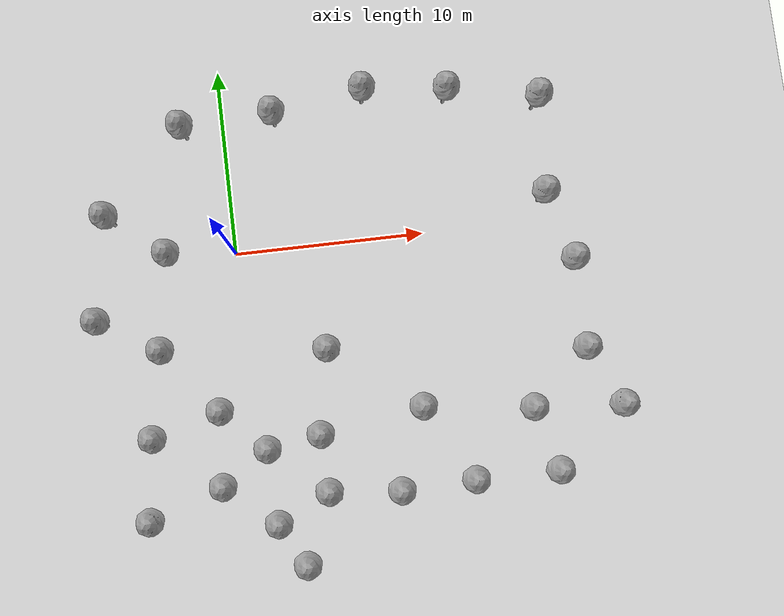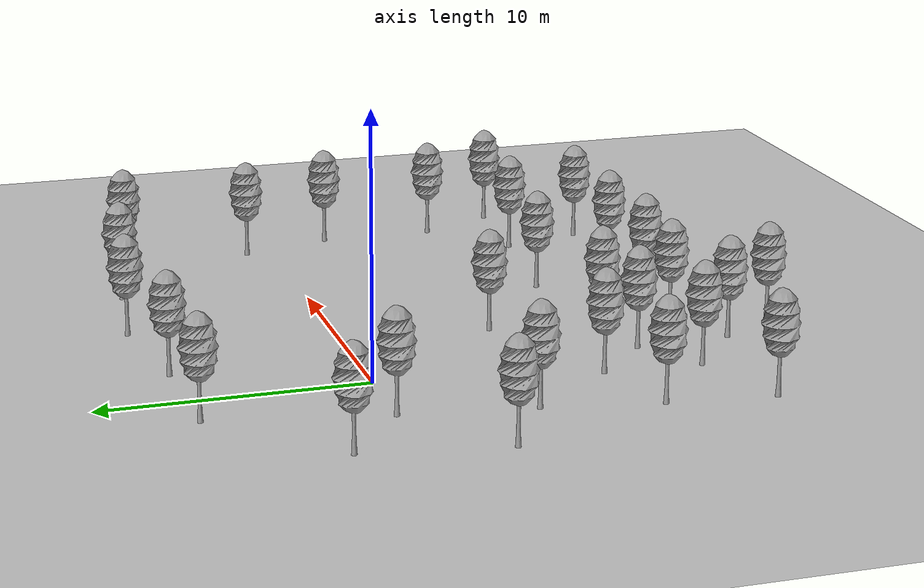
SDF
<sdf version="1.6">
 <world name="default">
  <model name="ground_plane">
   <static>1</static>
   <link name="link">
    <collision name="collision">
     <geometry><plane><normal>0 0 1</normal><size>100 100</size></plane></geometry>
     <surface>
      <contact><collide_bitmask>65535</collide_bitmask></contact>
      <friction><ode><mu>100</mu><mu2>50</mu2></ode></friction>
     </surface>
    </collision>
    <visual name="visual">
     <cast_shadows>0</cast_shadows>
     <geometry><plane><normal>0 0 1</normal><size>100 100</size></plane></geometry>
     <material>
      <script><uri>file://media/materials/scripts/gazebo.material</uri><name>Gazebo/Grey</name></script>
     </material>
    </visual>
   </link>
  </model>
  <model name="outdoor">
   <link name="link_0">
    <inertial>
     <mass>1</mass>
     <inertia>
      <ixx>0.166667</ixx>
      <ixy>0</ixy>
      <ixz>0</ixz>
      <iyy>0.166667</iyy>
      <iyz>0</iyz>
      <izz>0.166667</izz>
     </inertia>
    </inertial>
    <pose>-6.52363 -2.53794 0 0 -0 0</pose>
    <visual name="visual">
     <geometry>
      <mesh><uri>/home/kan/catkin_ws/src/drone/drone_gazebo/worlds/trees.dae</uri><scale>1 1 1</scale></mesh>
     </geometry>
     <material>
      <lighting>1</lighting>
      <script><uri>file://media/materials/scripts/gazebo.material</uri><name>Gazebo/Grey</name></script>
     </material>
    </visual>
    <collision name="collision">
     <geometry>
      <mesh><uri>/home/kan/catkin_ws/src/drone/drone_gazebo/worlds/trees.dae</uri><scale>1 1 1</scale></mesh>
     </geometry>
     <surface>
      <friction>
       <ode><mu>1</mu><mu2>1</mu2><fdir1>0 0 0</fdir1><slip1>0</slip1><slip2>0</slip2></ode>
       <torsional>
        <coefficient>1</coefficient>
        <patch_radius>0</patch_radius>
        <surface_radius>0</surface_radius>
        <use_patch_radius>1</use_patch_radius>
        <ode><slip>0</slip></ode>
       </torsional>
      </friction>
      <bounce><restitution_coefficient>0</restitution_coefficient><threshold>1e+06</threshold></bounce>
      <contact>
       <collide_without_contact>0</collide_without_contact>
       <collide_without_contact_bitmask>1</collide_without_contact_bitmask>
       <collide_bitmask>1</collide_bitmask>
       <ode>
        <soft_cfm>0</soft_cfm>
        <soft_erp>0.2</soft_erp>
        <kp>1e+13</kp>
        <kd>1</kd>
        <max_vel>0.01</max_vel>
        <min_depth>0</min_depth>
       </ode>
       <bullet>
        <split_impulse>1</split_impulse>
        <split_impulse_penetration_threshold>-0.01</split_impulse_penetration_threshold>
        <soft_cfm>0</soft_cfm>
        <soft_erp>0.2</soft_erp>
        <kp>1e+13</kp>
        <kd>1</kd>
       </bullet>
      </contact>
     </surface>
    </collision>
   </link>
   <link name="link_0_clone">
    <inertial>
     <mass>1</mass>
     <inertia>
      <ixx>0.166667</ixx>
      <ixy>0</ixy>
      <ixz>0</ixz>
      <iyy>0.166667</iyy>
      <iyz>0</iyz>
      <izz>0.166667</izz>
     </inertia>
    </inertial>
    <pose>-4.35591 -4.66473 0 0 -0 0</pose>
    <visual name="visual">
     <geometry>
      <mesh><uri>/home/kan/catkin_ws/src/drone/drone_gazebo/worlds/trees.dae</uri><scale>1 1 1</scale></mesh>
     </geometry>
     <material>
      <lighting>1</lighting>
      <script><uri>file://media/materials/scripts/gazebo.material</uri><name>Gazebo/Grey</name></script>
      <shader type="pixel"/>
     </material>
    </visual>
    <collision name="collision">
     <geometry>
      <mesh><uri>/home/kan/catkin_ws/src/drone/drone_gazebo/worlds/trees.dae</uri><scale>1 1 1</scale></mesh>
     </geometry>
     <surface>
      <friction>
       <ode><mu>1</mu><mu2>1</mu2><fdir1>0 0 0</fdir1><slip1>0</slip1><slip2>0</slip2></ode>
       <torsional>
        <coefficient>1</coefficient>
        <patch_radius>0</patch_radius>
        <surface_radius>0</surface_radius>
        <use_patch_radius>1</use_patch_radius>
        <ode><slip>0</slip></ode>
       </torsional>
      </friction>
      <bounce><restitution_coefficient>0</restitution_coefficient><threshold>1e+06</threshold></bounce>
      <contact>
       <collide_without_contact>0</collide_without_contact>
       <collide_without_contact_bitmask>1</collide_without_contact_bitmask>
       <collide_bitmask>1</collide_bitmask>
       <ode>
        <soft_cfm>0</soft_cfm>
        <soft_erp>0.2</soft_erp>
        <kp>1e+13</kp>
        <kd>1</kd>
        <max_vel>0.01</max_vel>
        <min_depth>0</min_depth>
       </ode>
       <bullet>
        <split_impulse>1</split_impulse>
        <split_impulse_penetration_threshold>-0.01</split_impulse_penetration_threshold>
        <soft_cfm>0</soft_cfm>
        <soft_erp>0.2</soft_erp>
        <kp>1e+13</kp>
        <kd>1</kd>
       </bullet>
      </contact>
     </surface>
    </collision>
   </link>
   <link name="link_0_clone_0">
    <inertial>
     <mass>1</mass>
     <inertia>
      <ixx>0.166667</ixx>
      <ixy>0</ixy>
      <ixz>0</ixz>
      <iyy>0.166667</iyy>
      <iyz>0</iyz>
      <izz>0.166667</izz>
     </inertia>
    </inertial>
    <pose>-1.65372 -4.23776 0 0 -0 0</pose>
    <visual name="visual">
     <geometry>
      <mesh><uri>/home/kan/catkin_ws/src/drone/drone_gazebo/worlds/trees.dae</uri><scale>1 1 1</scale></mesh>
     </geometry>
     <material>
      <lighting>1</lighting>
      <script><uri>file://media/materials/scripts/gazebo.material</uri><name>Gazebo/Grey</name></script>
      <shader type="pixel"/>
     </material>
    </visual>
    <collision name="collision">
     <geometry>
      <mesh><uri>/home/kan/catkin_ws/src/drone/drone_gazebo/worlds/trees.dae</uri><scale>1 1 1</scale></mesh>
     </geometry>
     <surface>
      <friction>
       <ode><mu>1</mu><mu2>1</mu2><fdir1>0 0 0</fdir1><slip1>0</slip1><slip2>0</slip2></ode>
       <torsional>
        <coefficient>1</coefficient>
        <patch_radius>0</patch_radius>
        <surface_radius>0</surface_radius>
        <use_patch_radius>1</use_patch_radius>
        <ode><slip>0</slip></ode>
       </torsional>
      </friction>
      <bounce><restitution_coefficient>0</restitution_coefficient><threshold>1e+06</threshold></bounce>
      <contact>
       <collide_without_contact>0</collide_without_contact>
       <collide_without_contact_bitmask>1</collide_without_contact_bitmask>
       <collide_bitmask>1</collide_bitmask>
       <ode>
        <soft_cfm>0</soft_cfm>
        <soft_erp>0.2</soft_erp>
        <kp>1e+13</kp>
        <kd>1</kd>
        <max_vel>0.01</max_vel>
        <min_depth>0</min_depth>
       </ode>
       <bullet>
        <split_impulse>1</split_impulse>
        <split_impulse_penetration_threshold>-0.01</split_impulse_penetration_threshold>
        <soft_cfm>0</soft_cfm>
        <soft_erp>0.2</soft_erp>
        <kp>1e+13</kp>
        <kd>1</kd>
       </bullet>
      </contact>
     </surface>
    </collision>
   </link>
   <link name="link_0_clone_1">
    <inertial>
     <mass>1</mass>
     <inertia>
      <ixx>0.166667</ixx>
      <ixy>0</ixy>
      <ixz>0</ixz>
      <iyy>0.166667</iyy>
      <iyz>0</iyz>
      <izz>0.166667</izz>
     </inertia>
    </inertial>
    <pose>-0.898204 0.003816 0 0 -0 0</pose>
    <visual name="visual">
     <geometry>
      <mesh><uri>/home/kan/catkin_ws/src/drone/drone_gazebo/worlds/trees.dae</uri><scale>1 1 1</scale></mesh>
     </geometry>
     <material>
      <lighting>1</lighting>
      <script><uri>file://media/materials/scripts/gazebo.material</uri><name>Gazebo/Grey</name></script>
      <shader type="pixel"/>
     </material>
    </visual>
    <collision name="collision">
     <geometry>
      <mesh><uri>/home/kan/catkin_ws/src/drone/drone_gazebo/worlds/trees.dae</uri><scale>1 1 1</scale></mesh>
     </geometry>
     <surface>
      <friction>
       <ode><mu>1</mu><mu2>1</mu2><fdir1>0 0 0</fdir1><slip1>0</slip1><slip2>0</slip2></ode>
       <torsional>
        <coefficient>1</coefficient>
        <patch_radius>0</patch_radius>
        <surface_radius>0</surface_radius>
        <use_patch_radius>1</use_patch_radius>
        <ode><slip>0</slip></ode>
       </torsional>
      </friction>
      <bounce><restitution_coefficient>0</restitution_coefficient><threshold>1e+06</threshold></bounce>
      <contact>
       <collide_without_contact>0</collide_without_contact>
       <collide_without_contact_bitmask>1</collide_without_contact_bitmask>
       <collide_bitmask>1</collide_bitmask>
       <ode>
        <soft_cfm>0</soft_cfm>
        <soft_erp>0.2</soft_erp>
        <kp>1e+13</kp>
        <kd>1</kd>
        <max_vel>0.01</max_vel>
        <min_depth>0</min_depth>
       </ode>
       <bullet>
        <split_impulse>1</split_impulse>
        <split_impulse_penetration_threshold>-0.01</split_impulse_penetration_threshold>
        <soft_cfm>0</soft_cfm>
        <soft_erp>0.2</soft_erp>
        <kp>1e+13</kp>
        <kd>1</kd>
       </bullet>
      </contact>
     </surface>
    </collision>
   </link>
   <link name="link_0_clone_10">
    <inertial>
     <mass>1</mass>
     <inertia>
      <ixx>0.166667</ixx>
      <ixy>0</ixy>
      <ixz>0</ixz>
      <iyy>0.166667</iyy>
      <iyz>0</iyz>
      <izz>0.166667</izz>
     </inertia>
    </inertial>
    <pose>9.09378 -4.09201 0 0 -0 0</pose>
    <visual name="visual">
     <geometry>
      <mesh><uri>/home/kan/catkin_ws/src/drone/drone_gazebo/worlds/trees.dae</uri><scale>1 1 1</scale></mesh>
     </geometry>
     <material>
      <lighting>1</lighting>
      <script><uri>file://media/materials/scripts/gazebo.material</uri><name>Gazebo/Grey</name></script>
      <shader type="pixel"/>
     </material>
    </visual>
    <collision name="collision">
     <geometry>
      <mesh><uri>/home/kan/catkin_ws/src/drone/drone_gazebo/worlds/trees.dae</uri><scale>1 1 1</scale></mesh>
     </geometry>
     <surface>
      <friction>
       <ode><mu>1</mu><mu2>1</mu2><fdir1>0 0 0</fdir1><slip1>0</slip1><slip2>0</slip2></ode>
       <torsional>
        <coefficient>1</coefficient>
        <patch_radius>0</patch_radius>
        <surface_radius>0</surface_radius>
        <use_patch_radius>1</use_patch_radius>
        <ode><slip>0</slip></ode>
       </torsional>
      </friction>
      <bounce><restitution_coefficient>0</restitution_coefficient><threshold>1e+06</threshold></bounce>
      <contact>
       <collide_without_contact>0</collide_without_contact>
       <collide_without_contact_bitmask>1</collide_without_contact_bitmask>
       <collide_bitmask>1</collide_bitmask>
       <ode>
        <soft_cfm>0</soft_cfm>
        <soft_erp>0.2</soft_erp>
        <kp>1e+13</kp>
        <kd>1</kd>
        <max_vel>0.01</max_vel>
        <min_depth>0</min_depth>
       </ode>
       <bullet>
        <split_impulse>1</split_impulse>
        <split_impulse_penetration_threshold>-0.01</split_impulse_penetration_threshold>
        <soft_cfm>0</soft_cfm>
        <soft_erp>0.2</soft_erp>
        <kp>1e+13</kp>
        <kd>1</kd>
       </bullet>
      </contact>
     </surface>
    </collision>
   </link>
   <link name="link_0_clone_11">
    <inertial>
     <mass>1</mass>
     <inertia>
      <ixx>0.166667</ixx>
      <ixy>0</ixy>
      <ixz>0</ixz>
      <iyy>0.166667</iyy>
      <iyz>0</iyz>
      <izz>0.166667</izz>
     </inertia>
    </inertial>
    <pose>5.75492 -7.30868 0 0 -0 0</pose>
    <visual name="visual">
     <geometry>
      <mesh><uri>/home/kan/catkin_ws/src/drone/drone_gazebo/worlds/trees.dae</uri><scale>1 1 1</scale></mesh>
     </geometry>
     <material>
      <lighting>1</lighting>
      <script><uri>file://media/materials/scripts/gazebo.material</uri><name>Gazebo/Grey</name></script>
      <shader type="pixel"/>
     </material>
    </visual>
    <collision name="collision">
     <geometry>
      <mesh><uri>/home/kan/catkin_ws/src/drone/drone_gazebo/worlds/trees.dae</uri><scale>1 1 1</scale></mesh>
     </geometry>
     <surface>
      <friction>
       <ode><mu>1</mu><mu2>1</mu2><fdir1>0 0 0</fdir1><slip1>0</slip1><slip2>0</slip2></ode>
       <torsional>
        <coefficient>1</coefficient>
        <patch_radius>0</patch_radius>
        <surface_radius>0</surface_radius>
        <use_patch_radius>1</use_patch_radius>
        <ode><slip>0</slip></ode>
       </torsional>
      </friction>
      <bounce><restitution_coefficient>0</restitution_coefficient><threshold>1e+06</threshold></bounce>
      <contact>
       <collide_without_contact>0</collide_without_contact>
       <collide_without_contact_bitmask>1</collide_without_contact_bitmask>
       <collide_bitmask>1</collide_bitmask>
       <ode>
        <soft_cfm>0</soft_cfm>
        <soft_erp>0.2</soft_erp>
        <kp>1e+13</kp>
        <kd>1</kd>
        <max_vel>0.01</max_vel>
        <min_depth>0</min_depth>
       </ode>
       <bullet>
        <split_impulse>1</split_impulse>
        <split_impulse_penetration_threshold>-0.01</split_impulse_penetration_threshold>
        <soft_cfm>0</soft_cfm>
        <soft_erp>0.2</soft_erp>
        <kp>1e+13</kp>
        <kd>1</kd>
       </bullet>
      </contact>
     </surface>
    </collision>
   </link>
   <link name="link_0_clone_12">
    <inertial>
     <mass>1</mass>
     <inertia>
      <ixx>0.166667</ixx>
      <ixy>0</ixy>
      <ixz>0</ixz>
      <iyy>0.166667</iyy>
      <iyz>0</iyz>
      <izz>0.166667</izz>
     </inertia>
    </inertial>
    <pose>2.04343 -7.44192 0 0 -0 0</pose>
    <visual name="visual">
     <geometry>
      <mesh><uri>/home/kan/catkin_ws/src/drone/drone_gazebo/worlds/trees.dae</uri><scale>1 1 1</scale></mesh>
     </geometry>
     <material>
      <lighting>1</lighting>
      <script><uri>file://media/materials/scripts/gazebo.material</uri><name>Gazebo/Grey</name></script>
      <shader type="pixel"/>
     </material>
    </visual>
    <collision name="collision">
     <geometry>
      <mesh><uri>/home/kan/catkin_ws/src/drone/drone_gazebo/worlds/trees.dae</uri><scale>1 1 1</scale></mesh>
     </geometry>
     <surface>
      <friction>
       <ode><mu>1</mu><mu2>1</mu2><fdir1>0 0 0</fdir1><slip1>0</slip1><slip2>0</slip2></ode>
       <torsional>
        <coefficient>1</coefficient>
        <patch_radius>0</patch_radius>
        <surface_radius>0</surface_radius>
        <use_patch_radius>1</use_patch_radius>
        <ode><slip>0</slip></ode>
       </torsional>
      </friction>
      <bounce><restitution_coefficient>0</restitution_coefficient><threshold>1e+06</threshold></bounce>
      <contact>
       <collide_without_contact>0</collide_without_contact>
       <collide_without_contact_bitmask>1</collide_without_contact_bitmask>
       <collide_bitmask>1</collide_bitmask>
       <ode>
        <soft_cfm>0</soft_cfm>
        <soft_erp>0.2</soft_erp>
        <kp>1e+13</kp>
        <kd>1</kd>
        <max_vel>0.01</max_vel>
        <min_depth>0</min_depth>
       </ode>
       <bullet>
        <split_impulse>1</split_impulse>
        <split_impulse_penetration_threshold>-0.01</split_impulse_penetration_threshold>
        <soft_cfm>0</soft_cfm>
        <soft_erp>0.2</soft_erp>
        <kp>1e+13</kp>
        <kd>1</kd>
       </bullet>
      </contact>
     </surface>
    </collision>
   </link>
   <link name="link_0_clone_13">
    <inertial>
     <mass>1</mass>
     <inertia>
      <ixx>0.166667</ixx>
      <ixy>0</ixy>
      <ixz>0</ixz>
      <iyy>0.166667</iyy>
      <iyz>0</iyz>
      <izz>0.166667</izz>
     </inertia>
    </inertial>
    <pose>-1.52974 -7.09005 0 0 -0 0</pose>
    <visual name="visual">
     <geometry>
      <mesh><uri>/home/kan/catkin_ws/src/drone/drone_gazebo/worlds/trees.dae</uri><scale>1 1 1</scale></mesh>
     </geometry>
     <material>
      <lighting>1</lighting>
      <script><uri>file://media/materials/scripts/gazebo.material</uri><name>Gazebo/Grey</name></script>
      <shader type="pixel"/>
     </material>
    </visual>
    <collision name="collision">
     <geometry>
      <mesh><uri>/home/kan/catkin_ws/src/drone/drone_gazebo/worlds/trees.dae</uri><scale>1 1 1</scale></mesh>
     </geometry>
     <surface>
      <friction>
       <ode><mu>1</mu><mu2>1</mu2><fdir1>0 0 0</fdir1><slip1>0</slip1><slip2>0</slip2></ode>
       <torsional>
        <coefficient>1</coefficient>
        <patch_radius>0</patch_radius>
        <surface_radius>0</surface_radius>
        <use_patch_radius>1</use_patch_radius>
        <ode><slip>0</slip></ode>
       </torsional>
      </friction>
      <bounce><restitution_coefficient>0</restitution_coefficient><threshold>1e+06</threshold></bounce>
      <contact>
       <collide_without_contact>0</collide_without_contact>
       <collide_without_contact_bitmask>1</collide_without_contact_bitmask>
       <collide_bitmask>1</collide_bitmask>
       <ode>
        <soft_cfm>0</soft_cfm>
        <soft_erp>0.2</soft_erp>
        <kp>1e+13</kp>
        <kd>1</kd>
        <max_vel>0.01</max_vel>
        <min_depth>0</min_depth>
       </ode>
       <bullet>
        <split_impulse>1</split_impulse>
        <split_impulse_penetration_threshold>-0.01</split_impulse_penetration_threshold>
        <soft_cfm>0</soft_cfm>
        <soft_erp>0.2</soft_erp>
        <kp>1e+13</kp>
        <kd>1</kd>
       </bullet>
      </contact>
     </surface>
    </collision>
   </link>
   <link name="link_0_clone_14">
    <inertial>
     <mass>1</mass>
     <inertia>
      <ixx>0.166667</ixx>
      <ixy>0</ixy>
      <ixz>0</ixz>
      <iyy>0.166667</iyy>
      <iyz>0</iyz>
      <izz>0.166667</izz>
     </inertia>
    </inertial>
    <pose>-4.16353 -8.36116 0 0 -0 0</pose>
    <visual name="visual">
     <geometry>
      <mesh><uri>/home/kan/catkin_ws/src/drone/drone_gazebo/worlds/trees.dae</uri><scale>1 1 1</scale></mesh>
     </geometry>
     <material>
      <lighting>1</lighting>
      <script><uri>file://media/materials/scripts/gazebo.material</uri><name>Gazebo/Grey</name></script>
      <shader type="pixel"/>
     </material>
    </visual>
    <collision name="collision">
     <geometry>
      <mesh><uri>/home/kan/catkin_ws/src/drone/drone_gazebo/worlds/trees.dae</uri><scale>1 1 1</scale></mesh>
     </geometry>
     <surface>
      <friction>
       <ode><mu>1</mu><mu2>1</mu2><fdir1>0 0 0</fdir1><slip1>0</slip1><slip2>0</slip2></ode>
       <torsional>
        <coefficient>1</coefficient>
        <patch_radius>0</patch_radius>
        <surface_radius>0</surface_radius>
        <use_patch_radius>1</use_patch_radius>
        <ode><slip>0</slip></ode>
       </torsional>
      </friction>
      <bounce><restitution_coefficient>0</restitution_coefficient><threshold>1e+06</threshold></bounce>
      <contact>
       <collide_without_contact>0</collide_without_contact>
       <collide_without_contact_bitmask>1</collide_without_contact_bitmask>
       <collide_bitmask>1</collide_bitmask>
       <ode>
        <soft_cfm>0</soft_cfm>
        <soft_erp>0.2</soft_erp>
        <kp>1e+13</kp>
        <kd>1</kd>
        <max_vel>0.01</max_vel>
        <min_depth>0</min_depth>
       </ode>
       <bullet>
        <split_impulse>1</split_impulse>
        <split_impulse_penetration_threshold>-0.01</split_impulse_penetration_threshold>
        <soft_cfm>0</soft_cfm>
        <soft_erp>0.2</soft_erp>
        <kp>1e+13</kp>
        <kd>1</kd>
       </bullet>
      </contact>
     </surface>
    </collision>
   </link>
   <link name="link_0_clone_15">
    <inertial>
     <mass>1</mass>
     <inertia>
      <ixx>0.166667</ixx>
      <ixy>0</ixy>
      <ixz>0</ixz>
      <iyy>0.166667</iyy>
      <iyz>0</iyz>
      <izz>0.166667</izz>
     </inertia>
    </inertial>
    <pose>-6.72286 -6.25778 0 0 -0 0</pose>
    <visual name="visual">
     <geometry>
      <mesh><uri>/home/kan/catkin_ws/src/drone/drone_gazebo/worlds/trees.dae</uri><scale>1 1 1</scale></mesh>
     </geometry>
     <material>
      <lighting>1</lighting>
      <script><uri>file://media/materials/scripts/gazebo.material</uri><name>Gazebo/Grey</name></script>
      <shader type="pixel"/>
     </material>
    </visual>
    <collision name="collision">
     <geometry>
      <mesh><uri>/home/kan/catkin_ws/src/drone/drone_gazebo/worlds/trees.dae</uri><scale>1 1 1</scale></mesh>
     </geometry>
     <surface>
      <friction>
       <ode><mu>1</mu><mu2>1</mu2><fdir1>0 0 0</fdir1><slip1>0</slip1><slip2>0</slip2></ode>
       <torsional>
        <coefficient>1</coefficient>
        <patch_radius>0</patch_radius>
        <surface_radius>0</surface_radius>
        <use_patch_radius>1</use_patch_radius>
        <ode><slip>0</slip></ode>
       </torsional>
      </friction>
      <bounce><restitution_coefficient>0</restitution_coefficient><threshold>1e+06</threshold></bounce>
      <contact>
       <collide_without_contact>0</collide_without_contact>
       <collide_without_contact_bitmask>1</collide_without_contact_bitmask>
       <collide_bitmask>1</collide_bitmask>
       <ode>
        <soft_cfm>0</soft_cfm>
        <soft_erp>0.2</soft_erp>
        <kp>1e+13</kp>
        <kd>1</kd>
        <max_vel>0.01</max_vel>
        <min_depth>0</min_depth>
       </ode>
       <bullet>
        <split_impulse>1</split_impulse>
        <split_impulse_penetration_threshold>-0.01</split_impulse_penetration_threshold>
        <soft_cfm>0</soft_cfm>
        <soft_erp>0.2</soft_erp>
        <kp>1e+13</kp>
        <kd>1</kd>
       </bullet>
      </contact>
     </surface>
    </collision>
   </link>
   <link name="link_0_clone_16">
    <inertial>
     <mass>1</mass>
     <inertia>
      <ixx>0.166667</ixx>
      <ixy>0</ixy>
      <ixz>0</ixz>
      <iyy>0.166667</iyy>
      <iyz>0</iyz>
      <izz>0.166667</izz>
     </inertia>
    </inertial>
    <pose>-9.99204 -3.51858 0 0 -0 0</pose>
    <visual name="visual">
     <geometry>
      <mesh><uri>/home/kan/catkin_ws/src/drone/drone_gazebo/worlds/trees.dae</uri><scale>1 1 1</scale></mesh>
     </geometry>
     <material>
      <lighting>1</lighting>
      <script><uri>file://media/materials/scripts/gazebo.material</uri><name>Gazebo/Grey</name></script>
      <shader type="pixel"/>
     </material>
    </visual>
    <collision name="collision">
     <geometry>
      <mesh><uri>/home/kan/catkin_ws/src/drone/drone_gazebo/worlds/trees.dae</uri><scale>1 1 1</scale></mesh>
     </geometry>
     <surface>
      <friction>
       <ode><mu>1</mu><mu2>1</mu2><fdir1>0 0 0</fdir1><slip1>0</slip1><slip2>0</slip2></ode>
       <torsional>
        <coefficient>1</coefficient>
        <patch_radius>0</patch_radius>
        <surface_radius>0</surface_radius>
        <use_patch_radius>1</use_patch_radius>
        <ode><slip>0</slip></ode>
       </torsional>
      </friction>
      <bounce><restitution_coefficient>0</restitution_coefficient><threshold>1e+06</threshold></bounce>
      <contact>
       <collide_without_contact>0</collide_without_contact>
       <collide_without_contact_bitmask>1</collide_without_contact_bitmask>
       <collide_bitmask>1</collide_bitmask>
       <ode>
        <soft_cfm>0</soft_cfm>
        <soft_erp>0.2</soft_erp>
        <kp>1e+13</kp>
        <kd>1</kd>
        <max_vel>0.01</max_vel>
        <min_depth>0</min_depth>
       </ode>
       <bullet>
        <split_impulse>1</split_impulse>
        <split_impulse_penetration_threshold>-0.01</split_impulse_penetration_threshold>
        <soft_cfm>0</soft_cfm>
        <soft_erp>0.2</soft_erp>
        <kp>1e+13</kp>
        <kd>1</kd>
       </bullet>
      </contact>
     </surface>
    </collision>
   </link>
   <link name="link_0_clone_17">
    <inertial>
     <mass>1</mass>
     <inertia>
      <ixx>0.166667</ixx>
      <ixy>0</ixy>
      <ixz>0</ixz>
      <iyy>0.166667</iyy>
      <iyz>0</iyz>
      <izz>0.166667</izz>
     </inertia>
    </inertial>
    <pose>12.1467 -1.37117 0 0 -0 0</pose>
    <visual name="visual">
     <geometry>
      <mesh><uri>/home/kan/catkin_ws/src/drone/drone_gazebo/worlds/trees.dae</uri><scale>1 1 1</scale></mesh>
     </geometry>
     <material>
      <lighting>1</lighting>
      <script><uri>file://media/materials/scripts/gazebo.material</uri><name>Gazebo/Grey</name></script>
      <shader type="pixel"/>
     </material>
    </visual>
    <collision name="collision">
     <geometry>
      <mesh><uri>/home/kan/catkin_ws/src/drone/drone_gazebo/worlds/trees.dae</uri><scale>1 1 1</scale></mesh>
     </geometry>
     <surface>
      <friction>
       <ode><mu>1</mu><mu2>1</mu2><fdir1>0 0 0</fdir1><slip1>0</slip1><slip2>0</slip2></ode>
       <torsional>
        <coefficient>1</coefficient>
        <patch_radius>0</patch_radius>
        <surface_radius>0</surface_radius>
        <use_patch_radius>1</use_patch_radius>
        <ode><slip>0</slip></ode>
       </torsional>
      </friction>
      <bounce><restitution_coefficient>0</restitution_coefficient><threshold>1e+06</threshold></bounce>
      <contact>
       <collide_without_contact>0</collide_without_contact>
       <collide_without_contact_bitmask>1</collide_without_contact_bitmask>
       <collide_bitmask>1</collide_bitmask>
       <ode>
        <soft_cfm>0</soft_cfm>
        <soft_erp>0.2</soft_erp>
        <kp>1e+13</kp>
        <kd>1</kd>
        <max_vel>0.01</max_vel>
        <min_depth>0</min_depth>
       </ode>
       <bullet>
        <split_impulse>1</split_impulse>
        <split_impulse_penetration_threshold>-0.01</split_impulse_penetration_threshold>
        <soft_cfm>0</soft_cfm>
        <soft_erp>0.2</soft_erp>
        <kp>1e+13</kp>
        <kd>1</kd>
       </bullet>
      </contact>
     </surface>
    </collision>
   </link>
   <link name="link_0_clone_18">
    <inertial>
     <mass>1</mass>
     <inertia>
      <ixx>0.166667</ixx>
      <ixy>0</ixy>
      <ixz>0</ixz>
      <iyy>0.166667</iyy>
      <iyz>0</iyz>
      <izz>0.166667</izz>
     </inertia>
    </inertial>
    <pose>12.1762 3.21211 0 0 -0 0</pose>
    <visual name="visual">
     <geometry>
      <mesh><uri>/home/kan/catkin_ws/src/drone/drone_gazebo/worlds/trees.dae</uri><scale>1 1 1</scale></mesh>
     </geometry>
     <material>
      <lighting>1</lighting>
      <script><uri>file://media/materials/scripts/gazebo.material</uri><name>Gazebo/Grey</name></script>
      <shader type="pixel"/>
     </material>
    </visual>
    <collision name="collision">
     <geometry>
      <mesh><uri>/home/kan/catkin_ws/src/drone/drone_gazebo/worlds/trees.dae</uri><scale>1 1 1</scale></mesh>
     </geometry>
     <surface>
      <friction>
       <ode><mu>1</mu><mu2>1</mu2><fdir1>0 0 0</fdir1><slip1>0</slip1><slip2>0</slip2></ode>
       <torsional>
        <coefficient>1</coefficient>
        <patch_radius>0</patch_radius>
        <surface_radius>0</surface_radius>
        <use_patch_radius>1</use_patch_radius>
        <ode><slip>0</slip></ode>
       </torsional>
      </friction>
      <bounce><restitution_coefficient>0</restitution_coefficient><threshold>1e+06</threshold></bounce>
      <contact>
       <collide_without_contact>0</collide_without_contact>
       <collide_without_contact_bitmask>1</collide_without_contact_bitmask>
       <collide_bitmask>1</collide_bitmask>
       <ode>
        <soft_cfm>0</soft_cfm>
        <soft_erp>0.2</soft_erp>
        <kp>1e+13</kp>
        <kd>1</kd>
        <max_vel>0.01</max_vel>
        <min_depth>0</min_depth>
       </ode>
       <bullet>
        <split_impulse>1</split_impulse>
        <split_impulse_penetration_threshold>-0.01</split_impulse_penetration_threshold>
        <soft_cfm>0</soft_cfm>
        <soft_erp>0.2</soft_erp>
        <kp>1e+13</kp>
        <kd>1</kd>
       </bullet>
      </contact>
     </surface>
    </collision>
   </link>
   <link name="link_0_clone_19">
    <inertial>
     <mass>1</mass>
     <inertia>
      <ixx>0.166667</ixx>
      <ixy>0</ixy>
      <ixz>0</ixz>
      <iyy>0.166667</iyy>
      <iyz>0</iyz>
      <izz>0.166667</izz>
     </inertia>
    </inertial>
    <pose>11.4924 11.873 0 0 -0 0</pose>
    <visual name="visual">
     <geometry>
      <mesh><uri>/home/kan/catkin_ws/src/drone/drone_gazebo/worlds/trees.dae</uri><scale>1 1 1</scale></mesh>
     </geometry>
     <material>
      <lighting>1</lighting>
      <script><uri>file://media/materials/scripts/gazebo.material</uri><name>Gazebo/Grey</name></script>
      <shader type="pixel"/>
     </material>
    </visual>
    <collision name="collision">
     <geometry>
      <mesh><uri>/home/kan/catkin_ws/src/drone/drone_gazebo/worlds/trees.dae</uri><scale>1 1 1</scale></mesh>
     </geometry>
     <surface>
      <friction>
       <ode><mu>1</mu><mu2>1</mu2><fdir1>0 0 0</fdir1><slip1>0</slip1><slip2>0</slip2></ode>
       <torsional>
        <coefficient>1</coefficient>
        <patch_radius>0</patch_radius>
        <surface_radius>0</surface_radius>
        <use_patch_radius>1</use_patch_radius>
        <ode><slip>0</slip></ode>
       </torsional>
      </friction>
      <bounce><restitution_coefficient>0</restitution_coefficient><threshold>1e+06</threshold></bounce>
      <contact>
       <collide_without_contact>0</collide_without_contact>
       <collide_without_contact_bitmask>1</collide_without_contact_bitmask>
       <collide_bitmask>1</collide_bitmask>
       <ode>
        <soft_cfm>0</soft_cfm>
        <soft_erp>0.2</soft_erp>
        <kp>1e+13</kp>
        <kd>1</kd>
        <max_vel>0.01</max_vel>
        <min_depth>0</min_depth>
       </ode>
       <bullet>
        <split_impulse>1</split_impulse>
        <split_impulse_penetration_threshold>-0.01</split_impulse_penetration_threshold>
        <soft_cfm>0</soft_cfm>
        <soft_erp>0.2</soft_erp>
        <kp>1e+13</kp>
        <kd>1</kd>
       </bullet>
      </contact>
     </surface>
    </collision>
   </link>
   <link name="link_0_clone_2">
    <inertial>
     <mass>1</mass>
     <inertia>
      <ixx>0.166667</ixx>
      <ixy>0</ixy>
      <ixz>0</ixz>
      <iyy>0.166667</iyy>
      <iyz>0</iyz>
      <izz>0.166667</izz>
     </inertia>
    </inertial>
    <pose>3.59789 -3.43388 0 0 -0 0</pose>
    <visual name="visual">
     <geometry>
      <mesh><uri>/home/kan/catkin_ws/src/drone/drone_gazebo/worlds/trees.dae</uri><scale>1 1 1</scale></mesh>
     </geometry>
     <material>
      <lighting>1</lighting>
      <script><uri>file://media/materials/scripts/gazebo.material</uri><name>Gazebo/Grey</name></script>
      <shader type="pixel"/>
     </material>
    </visual>
    <collision name="collision">
     <geometry>
      <mesh><uri>/home/kan/catkin_ws/src/drone/drone_gazebo/worlds/trees.dae</uri><scale>1 1 1</scale></mesh>
     </geometry>
     <surface>
      <friction>
       <ode><mu>1</mu><mu2>1</mu2><fdir1>0 0 0</fdir1><slip1>0</slip1><slip2>0</slip2></ode>
       <torsional>
        <coefficient>1</coefficient>
        <patch_radius>0</patch_radius>
        <surface_radius>0</surface_radius>
        <use_patch_radius>1</use_patch_radius>
        <ode><slip>0</slip></ode>
       </torsional>
      </friction>
      <bounce><restitution_coefficient>0</restitution_coefficient><threshold>1e+06</threshold></bounce>
      <contact>
       <collide_without_contact>0</collide_without_contact>
       <collide_without_contact_bitmask>1</collide_without_contact_bitmask>
       <collide_bitmask>1</collide_bitmask>
       <ode>
        <soft_cfm>0</soft_cfm>
        <soft_erp>0.2</soft_erp>
        <kp>1e+13</kp>
        <kd>1</kd>
        <max_vel>0.01</max_vel>
        <min_depth>0</min_depth>
       </ode>
       <bullet>
        <split_impulse>1</split_impulse>
        <split_impulse_penetration_threshold>-0.01</split_impulse_penetration_threshold>
        <soft_cfm>0</soft_cfm>
        <soft_erp>0.2</soft_erp>
        <kp>1e+13</kp>
        <kd>1</kd>
       </bullet>
      </contact>
     </surface>
    </collision>
   </link>
   <link name="link_0_clone_20">
    <inertial>
     <mass>1</mass>
     <inertia>
      <ixx>0.166667</ixx>
      <ixy>0</ixy>
      <ixz>0</ixz>
      <iyy>0.166667</iyy>
      <iyz>0</iyz>
      <izz>0.166667</izz>
     </inertia>
    </inertial>
    <pose>-11.4334 8.03385 0 0 -0 0</pose>
    <visual name="visual">
     <geometry>
      <mesh><uri>/home/kan/catkin_ws/src/drone/drone_gazebo/worlds/trees.dae</uri><scale>1 1 1</scale></mesh>
     </geometry>
     <material>
      <lighting>1</lighting>
      <script><uri>file://media/materials/scripts/gazebo.material</uri><name>Gazebo/Grey</name></script>
      <shader type="pixel"/>
     </material>
    </visual>
    <collision name="collision">
     <geometry>
      <mesh><uri>/home/kan/catkin_ws/src/drone/drone_gazebo/worlds/trees.dae</uri><scale>1 1 1</scale></mesh>
     </geometry>
     <surface>
      <friction>
       <ode><mu>1</mu><mu2>1</mu2><fdir1>0 0 0</fdir1><slip1>0</slip1><slip2>0</slip2></ode>
       <torsional>
        <coefficient>1</coefficient>
        <patch_radius>0</patch_radius>
        <surface_radius>0</surface_radius>
        <use_patch_radius>1</use_patch_radius>
        <ode><slip>0</slip></ode>
       </torsional>
      </friction>
      <bounce><restitution_coefficient>0</restitution_coefficient><threshold>1e+06</threshold></bounce>
      <contact>
       <collide_without_contact>0</collide_without_contact>
       <collide_without_contact_bitmask>1</collide_without_contact_bitmask>
       <collide_bitmask>1</collide_bitmask>
       <ode>
        <soft_cfm>0</soft_cfm>
        <soft_erp>0.2</soft_erp>
        <kp>1e+13</kp>
        <kd>1</kd>
        <max_vel>0.01</max_vel>
        <min_depth>0</min_depth>
       </ode>
       <bullet>
        <split_impulse>1</split_impulse>
        <split_impulse_penetration_threshold>-0.01</split_impulse_penetration_threshold>
        <soft_cfm>0</soft_cfm>
        <soft_erp>0.2</soft_erp>
        <kp>1e+13</kp>
        <kd>1</kd>
       </bullet>
      </contact>
     </surface>
    </collision>
   </link>
   <link name="link_0_clone_21">
    <inertial>
     <mass>1</mass>
     <inertia>
      <ixx>0.166667</ixx>
      <ixy>0</ixy>
      <ixz>0</ixz>
      <iyy>0.166667</iyy>
      <iyz>0</iyz>
      <izz>0.166667</izz>
     </inertia>
    </inertial>
    <pose>-12.3072 2.66996 0 0 -0 0</pose>
    <visual name="visual">
     <geometry>
      <mesh><uri>/home/kan/catkin_ws/src/drone/drone_gazebo/worlds/trees.dae</uri><scale>1 1 1</scale></mesh>
     </geometry>
     <material>
      <lighting>1</lighting>
      <script><uri>file://media/materials/scripts/gazebo.material</uri><name>Gazebo/Grey</name></script>
      <shader type="pixel"/>
     </material>
    </visual>
    <collision name="collision">
     <geometry>
      <mesh><uri>/home/kan/catkin_ws/src/drone/drone_gazebo/worlds/trees.dae</uri><scale>1 1 1</scale></mesh>
     </geometry>
     <surface>
      <friction>
       <ode><mu>1</mu><mu2>1</mu2><fdir1>0 0 0</fdir1><slip1>0</slip1><slip2>0</slip2></ode>
       <torsional>
        <coefficient>1</coefficient>
        <patch_radius>0</patch_radius>
        <surface_radius>0</surface_radius>
        <use_patch_radius>1</use_patch_radius>
        <ode><slip>0</slip></ode>
       </torsional>
      </friction>
      <bounce><restitution_coefficient>0</restitution_coefficient><threshold>1e+06</threshold></bounce>
      <contact>
       <collide_without_contact>0</collide_without_contact>
       <collide_without_contact_bitmask>1</collide_without_contact_bitmask>
       <collide_bitmask>1</collide_bitmask>
       <ode>
        <soft_cfm>0</soft_cfm>
        <soft_erp>0.2</soft_erp>
        <kp>1e+13</kp>
        <kd>1</kd>
        <max_vel>0.01</max_vel>
        <min_depth>0</min_depth>
       </ode>
       <bullet>
        <split_impulse>1</split_impulse>
        <split_impulse_penetration_threshold>-0.01</split_impulse_penetration_threshold>
        <soft_cfm>0</soft_cfm>
        <soft_erp>0.2</soft_erp>
        <kp>1e+13</kp>
        <kd>1</kd>
       </bullet>
      </contact>
     </surface>
    </collision>
   </link>
   <link name="link_0_clone_22">
    <inertial>
     <mass>1</mass>
     <inertia>
      <ixx>0.166667</ixx>
      <ixy>0</ixy>
      <ixz>0</ixz>
      <iyy>0.166667</iyy>
      <iyz>0</iyz>
      <izz>0.166667</izz>
     </inertia>
    </inertial>
    <pose>-2.96356 -10.4864 0 0 -0 0</pose>
    <visual name="visual">
     <geometry>
      <mesh><uri>/home/kan/catkin_ws/src/drone/drone_gazebo/worlds/trees.dae</uri><scale>1 1 1</scale></mesh>
     </geometry>
     <material>
      <lighting>1</lighting>
      <script><uri>file://media/materials/scripts/gazebo.material</uri><name>Gazebo/Grey</name></script>
      <shader type="pixel"/>
     </material>
    </visual>
    <collision name="collision">
     <geometry>
      <mesh><uri>/home/kan/catkin_ws/src/drone/drone_gazebo/worlds/trees.dae</uri><scale>1 1 1</scale></mesh>
     </geometry>
     <surface>
      <friction>
       <ode><mu>1</mu><mu2>1</mu2><fdir1>0 0 0</fdir1><slip1>0</slip1><slip2>0</slip2></ode>
       <torsional>
        <coefficient>1</coefficient>
        <patch_radius>0</patch_radius>
        <surface_radius>0</surface_radius>
        <use_patch_radius>1</use_patch_radius>
        <ode><slip>0</slip></ode>
       </torsional>
      </friction>
      <bounce><restitution_coefficient>0</restitution_coefficient><threshold>1e+06</threshold></bounce>
      <contact>
       <collide_without_contact>0</collide_without_contact>
       <collide_without_contact_bitmask>1</collide_without_contact_bitmask>
       <collide_bitmask>1</collide_bitmask>
       <ode>
        <soft_cfm>0</soft_cfm>
        <soft_erp>0.2</soft_erp>
        <kp>1e+13</kp>
        <kd>1</kd>
        <max_vel>0.01</max_vel>
        <min_depth>0</min_depth>
       </ode>
       <bullet>
        <split_impulse>1</split_impulse>
        <split_impulse_penetration_threshold>-0.01</split_impulse_penetration_threshold>
        <soft_cfm>0</soft_cfm>
        <soft_erp>0.2</soft_erp>
        <kp>1e+13</kp>
        <kd>1</kd>
       </bullet>
      </contact>
     </surface>
    </collision>
   </link>
   <link name="link_0_clone_23">
    <inertial>
     <mass>1</mass>
     <inertia>
      <ixx>0.166667</ixx>
      <ixy>0</ixy>
      <ixz>0</ixz>
      <iyy>0.166667</iyy>
      <iyz>0</iyz>
      <izz>0.166667</izz>
     </inertia>
    </inertial>
    <pose>-10.4512 -7.53565 0 0 -0 0</pose>
    <visual name="visual">
     <geometry>
      <mesh><uri>/home/kan/catkin_ws/src/drone/drone_gazebo/worlds/trees.dae</uri><scale>1 1 1</scale></mesh>
     </geometry>
     <material>
      <lighting>1</lighting>
      <script><uri>file://media/materials/scripts/gazebo.material</uri><name>Gazebo/Grey</name></script>
      <shader type="pixel"/>
     </material>
    </visual>
    <collision name="collision">
     <geometry>
      <mesh><uri>/home/kan/catkin_ws/src/drone/drone_gazebo/worlds/trees.dae</uri><scale>1 1 1</scale></mesh>
     </geometry>
     <surface>
      <friction>
       <ode><mu>1</mu><mu2>1</mu2><fdir1>0 0 0</fdir1><slip1>0</slip1><slip2>0</slip2></ode>
       <torsional>
        <coefficient>1</coefficient>
        <patch_radius>0</patch_radius>
        <surface_radius>0</surface_radius>
        <use_patch_radius>1</use_patch_radius>
        <ode><slip>0</slip></ode>
       </torsional>
      </friction>
      <bounce><restitution_coefficient>0</restitution_coefficient><threshold>1e+06</threshold></bounce>
      <contact>
       <collide_without_contact>0</collide_without_contact>
       <collide_without_contact_bitmask>1</collide_without_contact_bitmask>
       <collide_bitmask>1</collide_bitmask>
       <ode>
        <soft_cfm>0</soft_cfm>
        <soft_erp>0.2</soft_erp>
        <kp>1e+13</kp>
        <kd>1</kd>
        <max_vel>0.01</max_vel>
        <min_depth>0</min_depth>
       </ode>
       <bullet>
        <split_impulse>1</split_impulse>
        <split_impulse_penetration_threshold>-0.01</split_impulse_penetration_threshold>
        <soft_cfm>0</soft_cfm>
        <soft_erp>0.2</soft_erp>
        <kp>1e+13</kp>
        <kd>1</kd>
       </bullet>
      </contact>
     </surface>
    </collision>
   </link>
   <link name="link_0_clone_24">
    <inertial>
     <mass>1</mass>
     <inertia>
      <ixx>0.166667</ixx>
      <ixy>0</ixy>
      <ixz>0</ixz>
      <iyy>0.166667</iyy>
      <iyz>0</iyz>
      <izz>0.166667</izz>
     </inertia>
    </inertial>
    <pose>9.96718 -7.30933 0 0 -0 0</pose>
    <visual name="visual">
     <geometry>
      <mesh><uri>/home/kan/catkin_ws/src/drone/drone_gazebo/worlds/trees.dae</uri><scale>1 1 1</scale></mesh>
     </geometry>
     <material>
      <lighting>1</lighting>
      <script><uri>file://media/materials/scripts/gazebo.material</uri><name>Gazebo/Grey</name></script>
      <shader type="pixel"/>
     </material>
    </visual>
    <collision name="collision">
     <geometry>
      <mesh><uri>/home/kan/catkin_ws/src/drone/drone_gazebo/worlds/trees.dae</uri><scale>1 1 1</scale></mesh>
     </geometry>
     <surface>
      <friction>
       <ode><mu>1</mu><mu2>1</mu2><fdir1>0 0 0</fdir1><slip1>0</slip1><slip2>0</slip2></ode>
       <torsional>
        <coefficient>1</coefficient>
        <patch_radius>0</patch_radius>
        <surface_radius>0</surface_radius>
        <use_patch_radius>1</use_patch_radius>
        <ode><slip>0</slip></ode>
       </torsional>
      </friction>
      <bounce><restitution_coefficient>0</restitution_coefficient><threshold>1e+06</threshold></bounce>
      <contact>
       <collide_without_contact>0</collide_without_contact>
       <collide_without_contact_bitmask>1</collide_without_contact_bitmask>
       <collide_bitmask>1</collide_bitmask>
       <ode>
        <soft_cfm>0</soft_cfm>
        <soft_erp>0.2</soft_erp>
        <kp>1e+13</kp>
        <kd>1</kd>
        <max_vel>0.01</max_vel>
        <min_depth>0</min_depth>
       </ode>
       <bullet>
        <split_impulse>1</split_impulse>
        <split_impulse_penetration_threshold>-0.01</split_impulse_penetration_threshold>
        <soft_cfm>0</soft_cfm>
        <soft_erp>0.2</soft_erp>
        <kp>1e+13</kp>
        <kd>1</kd>
       </bullet>
      </contact>
     </surface>
    </collision>
   </link>
   <link name="link_0_clone_25">
    <inertial>
     <mass>1</mass>
     <inertia>
      <ixx>0.166667</ixx>
      <ixy>0</ixy>
      <ixz>0</ixz>
      <iyy>0.166667</iyy>
      <iyz>0</iyz>
      <izz>0.166667</izz>
     </inertia>
    </inertial>
    <pose>13.5844 -4.39914 0 0 -0 0</pose>
    <visual name="visual">
     <geometry>
      <mesh><uri>/home/kan/catkin_ws/src/drone/drone_gazebo/worlds/trees.dae</uri><scale>1 1 1</scale></mesh>
     </geometry>
     <material>
      <lighting>1</lighting>
      <script><uri>file://media/materials/scripts/gazebo.material</uri><name>Gazebo/Grey</name></script>
      <shader type="pixel"/>
     </material>
    </visual>
    <collision name="collision">
     <geometry>
      <mesh><uri>/home/kan/catkin_ws/src/drone/drone_gazebo/worlds/trees.dae</uri><scale>1 1 1</scale></mesh>
     </geometry>
     <surface>
      <friction>
       <ode><mu>1</mu><mu2>1</mu2><fdir1>0 0 0</fdir1><slip1>0</slip1><slip2>0</slip2></ode>
       <torsional>
        <coefficient>1</coefficient>
        <patch_radius>0</patch_radius>
        <surface_radius>0</surface_radius>
        <use_patch_radius>1</use_patch_radius>
        <ode><slip>0</slip></ode>
       </torsional>
      </friction>
      <bounce><restitution_coefficient>0</restitution_coefficient><threshold>1e+06</threshold></bounce>
      <contact>
       <collide_without_contact>0</collide_without_contact>
       <collide_without_contact_bitmask>1</collide_without_contact_bitmask>
       <collide_bitmask>1</collide_bitmask>
       <ode>
        <soft_cfm>0</soft_cfm>
        <soft_erp>0.2</soft_erp>
        <kp>1e+13</kp>
        <kd>1</kd>
        <max_vel>0.01</max_vel>
        <min_depth>0</min_depth>
       </ode>
       <bullet>
        <split_impulse>1</split_impulse>
        <split_impulse_penetration_threshold>-0.01</split_impulse_penetration_threshold>
        <soft_cfm>0</soft_cfm>
        <soft_erp>0.2</soft_erp>
        <kp>1e+13</kp>
        <kd>1</kd>
       </bullet>
      </contact>
     </surface>
    </collision>
   </link>
   <link name="link_0_clone_3">
    <inertial>
     <mass>1</mass>
     <inertia>
      <ixx>0.166667</ixx>
      <ixy>0</ixy>
      <ixz>0</ixz>
      <iyy>0.166667</iyy>
      <iyz>0</iyz>
      <izz>0.166667</izz>
     </inertia>
    </inertial>
    <pose>-9.20687 0.831564 0 0 -0 0</pose>
    <visual name="visual">
     <geometry>
      <mesh><uri>/home/kan/catkin_ws/src/drone/drone_gazebo/worlds/trees.dae</uri><scale>1 1 1</scale></mesh>
     </geometry>
     <material>
      <lighting>1</lighting>
      <script><uri>file://media/materials/scripts/gazebo.material</uri><name>Gazebo/Grey</name></script>
      <shader type="pixel"/>
     </material>
    </visual>
    <collision name="collision">
     <geometry>
      <mesh><uri>/home/kan/catkin_ws/src/drone/drone_gazebo/worlds/trees.dae</uri><scale>1 1 1</scale></mesh>
     </geometry>
     <surface>
      <friction>
       <ode><mu>1</mu><mu2>1</mu2><fdir1>0 0 0</fdir1><slip1>0</slip1><slip2>0</slip2></ode>
       <torsional>
        <coefficient>1</coefficient>
        <patch_radius>0</patch_radius>
        <surface_radius>0</surface_radius>
        <use_patch_radius>1</use_patch_radius>
        <ode><slip>0</slip></ode>
       </torsional>
      </friction>
      <bounce><restitution_coefficient>0</restitution_coefficient><threshold>1e+06</threshold></bounce>
      <contact>
       <collide_without_contact>0</collide_without_contact>
       <collide_without_contact_bitmask>1</collide_without_contact_bitmask>
       <collide_bitmask>1</collide_bitmask>
       <ode>
        <soft_cfm>0</soft_cfm>
        <soft_erp>0.2</soft_erp>
        <kp>1e+13</kp>
        <kd>1</kd>
        <max_vel>0.01</max_vel>
        <min_depth>0</min_depth>
       </ode>
       <bullet>
        <split_impulse>1</split_impulse>
        <split_impulse_penetration_threshold>-0.01</split_impulse_penetration_threshold>
        <soft_cfm>0</soft_cfm>
        <soft_erp>0.2</soft_erp>
        <kp>1e+13</kp>
        <kd>1</kd>
       </bullet>
      </contact>
     </surface>
    </collision>
   </link>
   <link name="link_0_clone_4">
    <inertial>
     <mass>1</mass>
     <inertia>
      <ixx>0.166667</ixx>
      <ixy>0</ixy>
      <ixz>0</ixz>
      <iyy>0.166667</iyy>
      <iyz>0</iyz>
      <izz>0.166667</izz>
     </inertia>
    </inertial>
    <pose>-8.47557 5.75607 0 0 -0 0</pose>
    <visual name="visual">
     <geometry>
      <mesh><uri>/home/kan/catkin_ws/src/drone/drone_gazebo/worlds/trees.dae</uri><scale>1 1 1</scale></mesh>
     </geometry>
     <material>
      <lighting>1</lighting>
      <script><uri>file://media/materials/scripts/gazebo.material</uri><name>Gazebo/Grey</name></script>
      <shader type="pixel"/>
     </material>
    </visual>
    <collision name="collision">
     <geometry>
      <mesh><uri>/home/kan/catkin_ws/src/drone/drone_gazebo/worlds/trees.dae</uri><scale>1 1 1</scale></mesh>
     </geometry>
     <surface>
      <friction>
       <ode><mu>1</mu><mu2>1</mu2><fdir1>0 0 0</fdir1><slip1>0</slip1><slip2>0</slip2></ode>
       <torsional>
        <coefficient>1</coefficient>
        <patch_radius>0</patch_radius>
        <surface_radius>0</surface_radius>
        <use_patch_radius>1</use_patch_radius>
        <ode><slip>0</slip></ode>
       </torsional>
      </friction>
      <bounce><restitution_coefficient>0</restitution_coefficient><threshold>1e+06</threshold></bounce>
      <contact>
       <collide_without_contact>0</collide_without_contact>
       <collide_without_contact_bitmask>1</collide_without_contact_bitmask>
       <collide_bitmask>1</collide_bitmask>
       <ode>
        <soft_cfm>0</soft_cfm>
        <soft_erp>0.2</soft_erp>
        <kp>1e+13</kp>
        <kd>1</kd>
        <max_vel>0.01</max_vel>
        <min_depth>0</min_depth>
       </ode>
       <bullet>
        <split_impulse>1</split_impulse>
        <split_impulse_penetration_threshold>-0.01</split_impulse_penetration_threshold>
        <soft_cfm>0</soft_cfm>
        <soft_erp>0.2</soft_erp>
        <kp>1e+13</kp>
        <kd>1</kd>
       </bullet>
      </contact>
     </surface>
    </collision>
   </link>
   <link name="link_0_clone_5">
    <inertial>
     <mass>1</mass>
     <inertia>
      <ixx>0.166667</ixx>
      <ixy>0</ixy>
      <ixz>0</ixz>
      <iyy>0.166667</iyy>
      <iyz>0</iyz>
      <izz>0.166667</izz>
     </inertia>
    </inertial>
    <pose>-7.15259 12.3161 0 0 -0 0</pose>
    <visual name="visual">
     <geometry>
      <mesh><uri>/home/kan/catkin_ws/src/drone/drone_gazebo/worlds/trees.dae</uri><scale>1 1 1</scale></mesh>
     </geometry>
     <material>
      <lighting>1</lighting>
      <script><uri>file://media/materials/scripts/gazebo.material</uri><name>Gazebo/Grey</name></script>
      <shader type="pixel"/>
     </material>
    </visual>
    <collision name="collision">
     <geometry>
      <mesh><uri>/home/kan/catkin_ws/src/drone/drone_gazebo/worlds/trees.dae</uri><scale>1 1 1</scale></mesh>
     </geometry>
     <surface>
      <friction>
       <ode><mu>1</mu><mu2>1</mu2><fdir1>0 0 0</fdir1><slip1>0</slip1><slip2>0</slip2></ode>
       <torsional>
        <coefficient>1</coefficient>
        <patch_radius>0</patch_radius>
        <surface_radius>0</surface_radius>
        <use_patch_radius>1</use_patch_radius>
        <ode><slip>0</slip></ode>
       </torsional>
      </friction>
      <bounce><restitution_coefficient>0</restitution_coefficient><threshold>1e+06</threshold></bounce>
      <contact>
       <collide_without_contact>0</collide_without_contact>
       <collide_without_contact_bitmask>1</collide_without_contact_bitmask>
       <collide_bitmask>1</collide_bitmask>
       <ode>
        <soft_cfm>0</soft_cfm>
        <soft_erp>0.2</soft_erp>
        <kp>1e+13</kp>
        <kd>1</kd>
        <max_vel>0.01</max_vel>
        <min_depth>0</min_depth>
       </ode>
       <bullet>
        <split_impulse>1</split_impulse>
        <split_impulse_penetration_threshold>-0.01</split_impulse_penetration_threshold>
        <soft_cfm>0</soft_cfm>
        <soft_erp>0.2</soft_erp>
        <kp>1e+13</kp>
        <kd>1</kd>
       </bullet>
      </contact>
     </surface>
    </collision>
   </link>
   <link name="link_0_clone_6">
    <inertial>
     <mass>1</mass>
     <inertia>
      <ixx>0.166667</ixx>
      <ixy>0</ixy>
      <ixz>0</ixz>
      <iyy>0.166667</iyy>
      <iyz>0</iyz>
      <izz>0.166667</izz>
     </inertia>
    </inertial>
    <pose>-2.37894 12.5196 0 0 -0 0</pose>
    <visual name="visual">
     <geometry>
      <mesh><uri>/home/kan/catkin_ws/src/drone/drone_gazebo/worlds/trees.dae</uri><scale>1 1 1</scale></mesh>
     </geometry>
     <material>
      <lighting>1</lighting>
      <script><uri>file://media/materials/scripts/gazebo.material</uri><name>Gazebo/Grey</name></script>
      <shader type="pixel"/>
     </material>
    </visual>
    <collision name="collision">
     <geometry>
      <mesh><uri>/home/kan/catkin_ws/src/drone/drone_gazebo/worlds/trees.dae</uri><scale>1 1 1</scale></mesh>
     </geometry>
     <surface>
      <friction>
       <ode><mu>1</mu><mu2>1</mu2><fdir1>0 0 0</fdir1><slip1>0</slip1><slip2>0</slip2></ode>
       <torsional>
        <coefficient>1</coefficient>
        <patch_radius>0</patch_radius>
        <surface_radius>0</surface_radius>
        <use_patch_radius>1</use_patch_radius>
        <ode><slip>0</slip></ode>
       </torsional>
      </friction>
      <bounce><restitution_coefficient>0</restitution_coefficient><threshold>1e+06</threshold></bounce>
      <contact>
       <collide_without_contact>0</collide_without_contact>
       <collide_without_contact_bitmask>1</collide_without_contact_bitmask>
       <collide_bitmask>1</collide_bitmask>
       <ode>
        <soft_cfm>0</soft_cfm>
        <soft_erp>0.2</soft_erp>
        <kp>1e+13</kp>
        <kd>1</kd>
        <max_vel>0.01</max_vel>
        <min_depth>0</min_depth>
       </ode>
       <bullet>
        <split_impulse>1</split_impulse>
        <split_impulse_penetration_threshold>-0.01</split_impulse_penetration_threshold>
        <soft_cfm>0</soft_cfm>
        <soft_erp>0.2</soft_erp>
        <kp>1e+13</kp>
        <kd>1</kd>
       </bullet>
      </contact>
     </surface>
    </collision>
   </link>
   <link name="link_0_clone_7">
    <inertial>
     <mass>1</mass>
     <inertia>
      <ixx>0.166667</ixx>
      <ixy>0</ixy>
      <ixz>0</ixz>
      <iyy>0.166667</iyy>
      <iyz>0</iyz>
      <izz>0.166667</izz>
     </inertia>
    </inertial>
    <pose>2.41007 13.2542 0 0 -0 0</pose>
    <visual name="visual">
     <geometry>
      <mesh><uri>/home/kan/catkin_ws/src/drone/drone_gazebo/worlds/trees.dae</uri><scale>1 1 1</scale></mesh>
     </geometry>
     <material>
      <lighting>1</lighting>
      <script><uri>file://media/materials/scripts/gazebo.material</uri><name>Gazebo/Grey</name></script>
      <shader type="pixel"/>
     </material>
    </visual>
    <collision name="collision">
     <geometry>
      <mesh><uri>/home/kan/catkin_ws/src/drone/drone_gazebo/worlds/trees.dae</uri><scale>1 1 1</scale></mesh>
     </geometry>
     <surface>
      <friction>
       <ode><mu>1</mu><mu2>1</mu2><fdir1>0 0 0</fdir1><slip1>0</slip1><slip2>0</slip2></ode>
       <torsional>
        <coefficient>1</coefficient>
        <patch_radius>0</patch_radius>
        <surface_radius>0</surface_radius>
        <use_patch_radius>1</use_patch_radius>
        <ode><slip>0</slip></ode>
       </torsional>
      </friction>
      <bounce><restitution_coefficient>0</restitution_coefficient><threshold>1e+06</threshold></bounce>
      <contact>
       <collide_without_contact>0</collide_without_contact>
       <collide_without_contact_bitmask>1</collide_without_contact_bitmask>
       <collide_bitmask>1</collide_bitmask>
       <ode>
        <soft_cfm>0</soft_cfm>
        <soft_erp>0.2</soft_erp>
        <kp>1e+13</kp>
        <kd>1</kd>
        <max_vel>0.01</max_vel>
        <min_depth>0</min_depth>
       </ode>
       <bullet>
        <split_impulse>1</split_impulse>
        <split_impulse_penetration_threshold>-0.01</split_impulse_penetration_threshold>
        <soft_cfm>0</soft_cfm>
        <soft_erp>0.2</soft_erp>
        <kp>1e+13</kp>
        <kd>1</kd>
       </bullet>
      </contact>
     </surface>
    </collision>
   </link>
   <link name="link_0_clone_8">
    <inertial>
     <mass>1</mass>
     <inertia>
      <ixx>0.166667</ixx>
      <ixy>0</ixy>
      <ixz>0</ixz>
      <iyy>0.166667</iyy>
      <iyz>0</iyz>
      <izz>0.166667</izz>
     </inertia>
    </inertial>
    <pose>6.77559 12.7742 0 0 -0 0</pose>
    <visual name="visual">
     <geometry>
      <mesh><uri>/home/kan/catkin_ws/src/drone/drone_gazebo/worlds/trees.dae</uri><scale>1 1 1</scale></mesh>
     </geometry>
     <material>
      <lighting>1</lighting>
      <script><uri>file://media/materials/scripts/gazebo.material</uri><name>Gazebo/Grey</name></script>
      <shader type="pixel"/>
     </material>
    </visual>
    <collision name="collision">
     <geometry>
      <mesh><uri>/home/kan/catkin_ws/src/drone/drone_gazebo/worlds/trees.dae</uri><scale>1 1 1</scale></mesh>
     </geometry>
     <surface>
      <friction>
       <ode><mu>1</mu><mu2>1</mu2><fdir1>0 0 0</fdir1><slip1>0</slip1><slip2>0</slip2></ode>
       <torsional>
        <coefficient>1</coefficient>
        <patch_radius>0</patch_radius>
        <surface_radius>0</surface_radius>
        <use_patch_radius>1</use_patch_radius>
        <ode><slip>0</slip></ode>
       </torsional>
      </friction>
      <bounce><restitution_coefficient>0</restitution_coefficient><threshold>1e+06</threshold></bounce>
      <contact>
       <collide_without_contact>0</collide_without_contact>
       <collide_without_contact_bitmask>1</collide_without_contact_bitmask>
       <collide_bitmask>1</collide_bitmask>
       <ode>
        <soft_cfm>0</soft_cfm>
        <soft_erp>0.2</soft_erp>
        <kp>1e+13</kp>
        <kd>1</kd>
        <max_vel>0.01</max_vel>
        <min_depth>0</min_depth>
       </ode>
       <bullet>
        <split_impulse>1</split_impulse>
        <split_impulse_penetration_threshold>-0.01</split_impulse_penetration_threshold>
        <soft_cfm>0</soft_cfm>
        <soft_erp>0.2</soft_erp>
        <kp>1e+13</kp>
        <kd>1</kd>
       </bullet>
      </contact>
     </surface>
    </collision>
   </link>
   <link name="link_0_clone_9">
    <inertial>
     <mass>1</mass>
     <inertia>
      <ixx>0.166667</ixx>
      <ixy>0</ixy>
      <ixz>0</ixz>
      <iyy>0.166667</iyy>
      <iyz>0</iyz>
      <izz>0.166667</izz>
     </inertia>
    </inertial>
    <pose>11.1664 6.80158 0 0 -0 0</pose>
    <visual name="visual">
     <geometry>
      <mesh><uri>/home/kan/catkin_ws/src/drone/drone_gazebo/worlds/trees.dae</uri><scale>1 1 1</scale></mesh>
     </geometry>
     <material>
      <lighting>1</lighting>
      <script><uri>file://media/materials/scripts/gazebo.material</uri><name>Gazebo/Grey</name></script>
      <shader type="pixel"/>
     </material>
    </visual>
    <collision name="collision">
     <geometry>
      <mesh><uri>/home/kan/catkin_ws/src/drone/drone_gazebo/worlds/trees.dae</uri><scale>1 1 1</scale></mesh>
     </geometry>
     <surface>
      <friction>
       <ode><mu>1</mu><mu2>1</mu2><fdir1>0 0 0</fdir1><slip1>0</slip1><slip2>0</slip2></ode>
       <torsional>
        <coefficient>1</coefficient>
        <patch_radius>0</patch_radius>
        <surface_radius>0</surface_radius>
        <use_patch_radius>1</use_patch_radius>
        <ode><slip>0</slip></ode>
       </torsional>
      </friction>
      <bounce><restitution_coefficient>0</restitution_coefficient><threshold>1e+06</threshold></bounce>
      <contact>
       <collide_without_contact>0</collide_without_contact>
       <collide_without_contact_bitmask>1</collide_without_contact_bitmask>
       <collide_bitmask>1</collide_bitmask>
       <ode>
        <soft_cfm>0</soft_cfm>
        <soft_erp>0.2</soft_erp>
        <kp>1e+13</kp>
        <kd>1</kd>
        <max_vel>0.01</max_vel>
        <min_depth>0</min_depth>
       </ode>
       <bullet>
        <split_impulse>1</split_impulse>
        <split_impulse_penetration_threshold>-0.01</split_impulse_penetration_threshold>
        <soft_cfm>0</soft_cfm>
        <soft_erp>0.2</soft_erp>
        <kp>1e+13</kp>
        <kd>1</kd>
       </bullet>
      </contact>
     </surface>
    </collision>
   </link>
   <static>0</static>
   <pose>5.18175 -5.72199 0 0 -0 0</pose>
  </model>
 </world>
</sdf>
